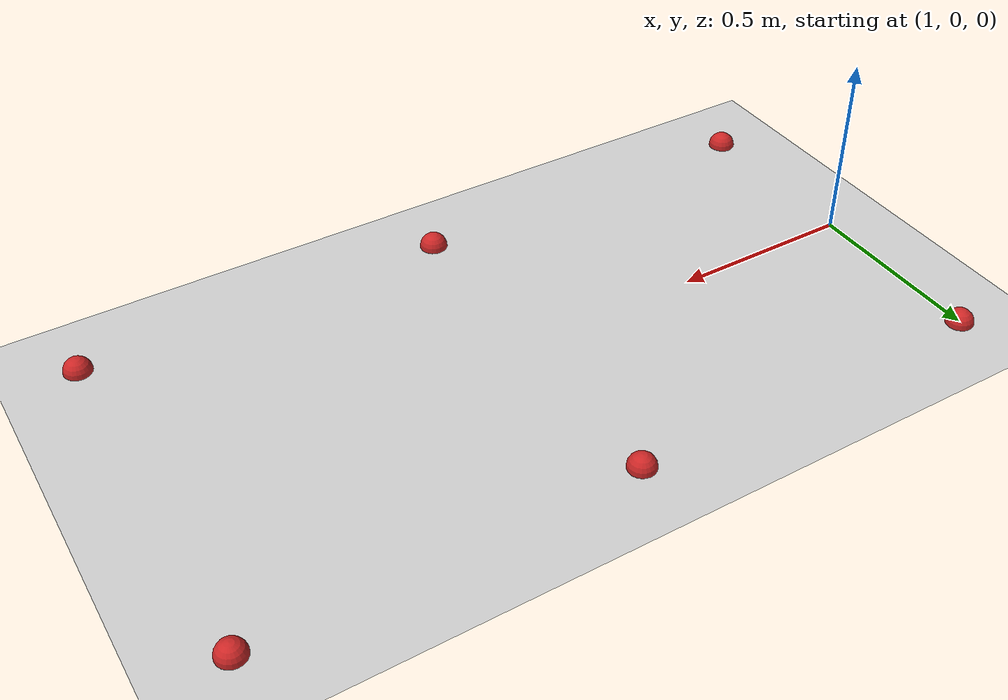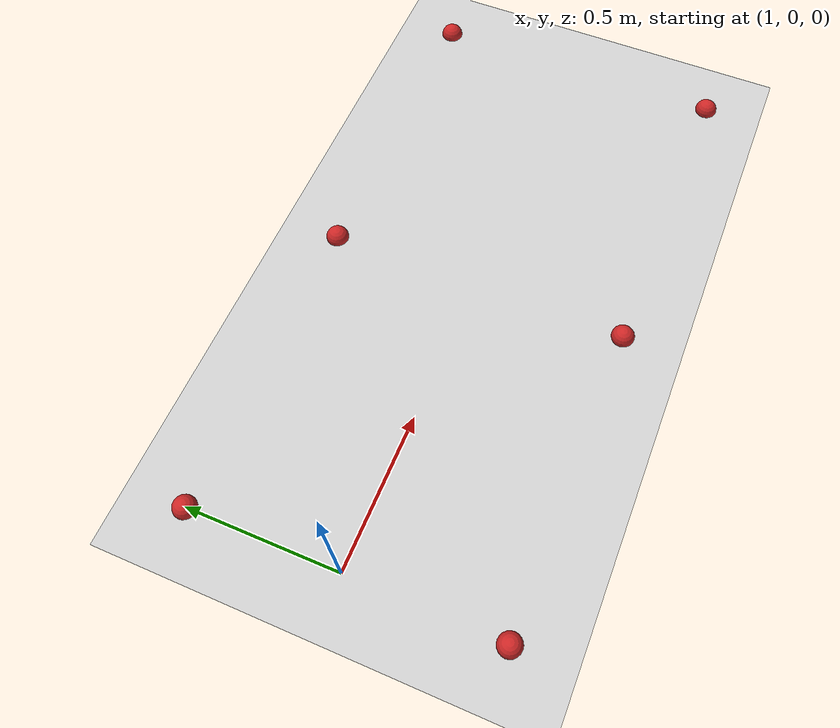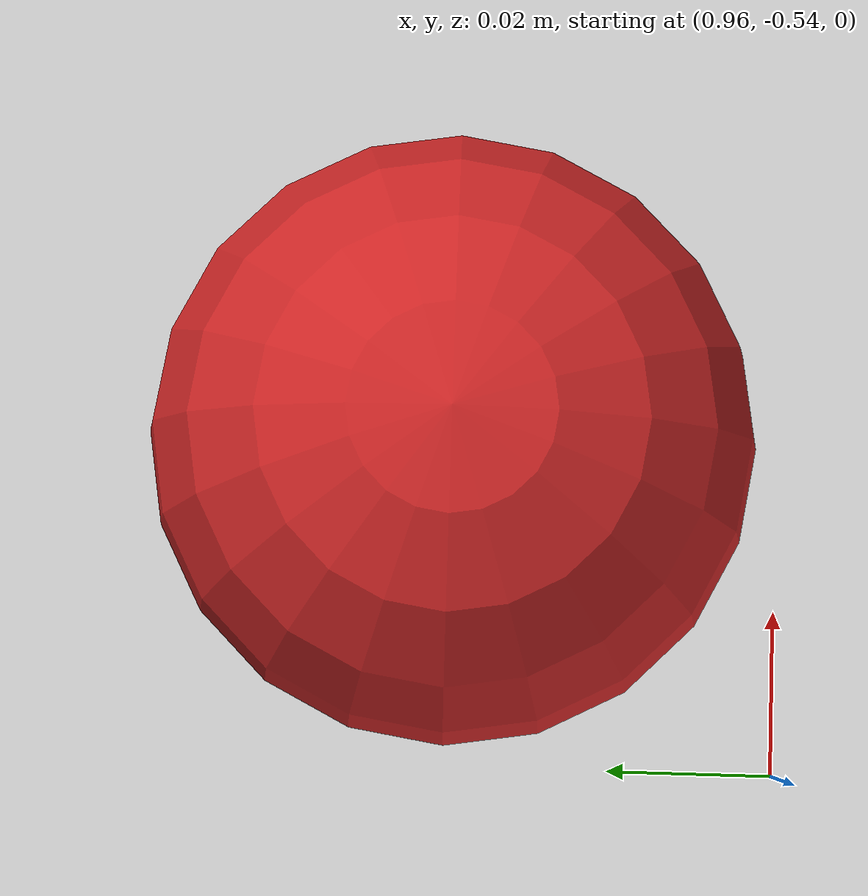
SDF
<?xml version="1.0" ?>
<sdf version="1.4">
  <world name="default">
    <include>
      <uri>model://ground_plane</uri>
    </include>
    <include>
      <uri>model://sun</uri>
    </include>
    <model name='cricket_ball_0'>
        <pose>1 -0.5 0 0 -0 0</pose>
        <link name='link'>
          <collision name='collision'>
            <geometry>
              <sphere>
                <radius>0.0375</radius>
            </sphere>
          </geometry>
        </collision>
          <visual name='visual'>
            <geometry>
              <sphere>
                <radius>0.0375</radius>
            </sphere>
          </geometry>
            <material>
              <script>
                <uri>file://media/materials/scripts/gazebo.material</uri>
                <name>Gazebo/Red</name>
            </script>
          </material>
        </visual>
      </link>
      <static>0</static>
    </model>
    <model name='cricket_ball_1'>
        <pose>1 0.5 0 0 -0 0</pose>
        <link name='link'>
          <collision name='collision'>
            <geometry>
              <sphere>
                <radius>0.0375</radius>
            </sphere>
          </geometry>
        </collision>
          <visual name='visual'>
            <geometry>
              <sphere>
                <radius>0.0375</radius>
            </sphere>
          </geometry>
            <material>
              <script>
                <uri>file://media/materials/scripts/gazebo.material</uri>
                <name>Gazebo/Red</name>
            </script>
          </material>
        </visual>
      </link>
      <static>0</static>
    </model>
    <model name='cricket_ball_2'>
        <pose>2 -0.5 0 0 -0 0</pose>
        <link name='link'>
          <collision name='collision'>
            <geometry>
              <sphere>
                <radius>0.0375</radius>
            </sphere>
          </geometry>
        </collision>
          <visual name='visual'>
            <geometry>
              <sphere>
                <radius>0.0375</radius>
            </sphere>
          </geometry>
            <material>
              <script>
                <uri>file://media/materials/scripts/gazebo.material</uri>
                <name>Gazebo/Red</name>
            </script>
          </material>
        </visual>
      </link>
      <static>0</static>
    </model>
    <model name='cricket_ball_3'>
        <pose>2 0.5 0 0 -0 0</pose>
        <link name='link'>
          <collision name='collision'>
            <geometry>
              <sphere>
                <radius>0.0375</radius>
            </sphere>
          </geometry>
        </collision>
          <visual name='visual'>
            <geometry>
              <sphere>
                <radius>0.0375</radius>
            </sphere>
          </geometry>
            <material>
              <script>
                <uri>file://media/materials/scripts/gazebo.material</uri>
                <name>Gazebo/Red</name>
            </script>
          </material>
        </visual>
      </link>
      <static>0</static>
    </model>
    <model name='cricket_ball_4'>
        <pose>3 -0.5 0 0 -0 0</pose>
        <link name='link'>
          <collision name='collision'>
            <geometry>
              <sphere>
                <radius>0.0375</radius>
            </sphere>
          </geometry>
        </collision>
          <visual name='visual'>
            <geometry>
              <sphere>
                <radius>0.0375</radius>
            </sphere>
          </geometry>
            <material>
              <script>
                <uri>file://media/materials/scripts/gazebo.material</uri>
                <name>Gazebo/Red</name>
            </script>
          </material>
        </visual>
      </link>
      <static>0</static>
    </model>
    <model name='cricket_ball_5'>
        <pose>3 0.5 0 0 -0 0</pose>
        <link name='link'>
          <collision name='collision'>
            <geometry>
              <sphere>
                <radius>0.0375</radius>
            </sphere>
          </geometry>
        </collision>
          <visual name='visual'>
            <geometry>
              <sphere>
                <radius>0.0375</radius>
            </sphere>
          </geometry>
            <material>
              <script>
                <uri>file://media/materials/scripts/gazebo.material</uri>
                <name>Gazebo/Red</name>
            </script>
          </material>
        </visual>
      </link>
      <static>0</static>
    </model>
  </world>
</sdf>
